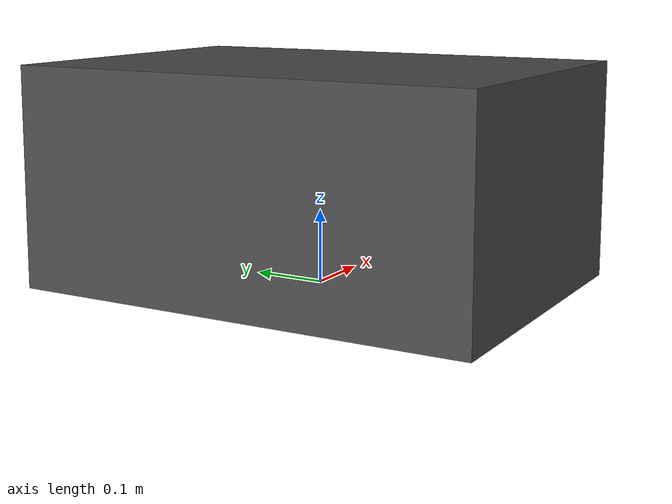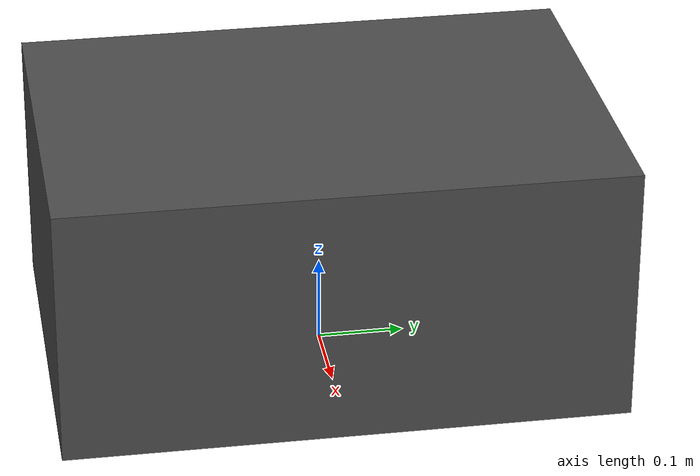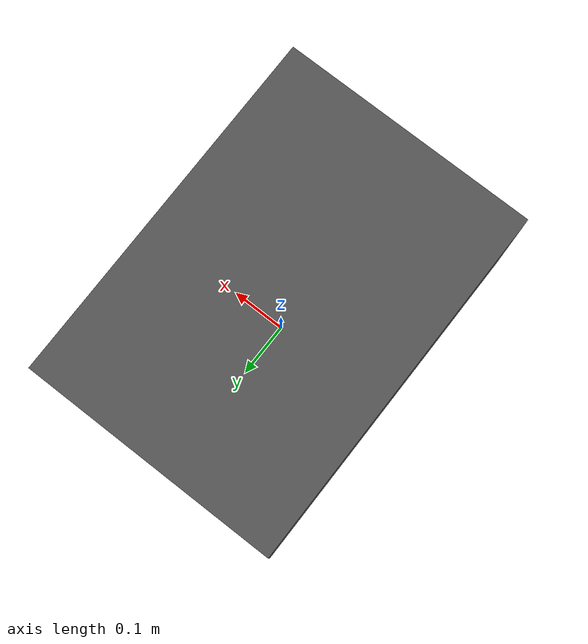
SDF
<?xml version='1.0'?>
<sdf version='1.6'>
  <model name='table'>
    <link name='link'>
      <pose>0 0 0.15 0 -0 0</pose>
      <inertial>
        <pose>0 0 0 0 -0 0</pose>
        <mass>10</mass>
        <inertia>
          <ixx>0.166667</ixx>
          <ixy>0</ixy>
          <ixz>0</ixz>
          <iyy>0.166667</iyy>
          <iyz>0</iyz>
          <izz>0.166667</izz>
        </inertia>
      </inertial>
      <self_collide>0</self_collide>
      <enable_wind>0</enable_wind>
      <kinematic>0</kinematic>

      <visual name='visual'>
        <pose>0 0 0 0 -0 0</pose>
        <geometry>
          <box>
            <size>0.453157 0.642049 0.3</size>
          </box>
        </geometry>
        <material>
          <script>
            <name>Gazebo/DarkGrey</name>
            <uri>file://media/materials/scripts/gazebo.material</uri>
          </script>
          <shader type='pixel'/>
        </material>
        <pose>0 0 0 0 -0 0</pose>
        <transparency>0</transparency>
        <cast_shadows>1</cast_shadows>
      </visual>

      <collision name='collision'>
        <laser_retro>0</laser_retro>
        <max_contacts>10</max_contacts>
        <pose>0 0 0 0 -0 0</pose>
        <geometry>
          <box>
            <size>0.453157 0.642049 0.3</size>
          </box>
        </geometry>
        <surface>
          <friction>
            <ode>
              <mu>1</mu>
              <mu2>1</mu2>
            </ode>
          </friction>
        </surface>
      </collision>
    </link>
    <static>1</static>
    <allow_auto_disable>1</allow_auto_disable>
  </model>
</sdf>
